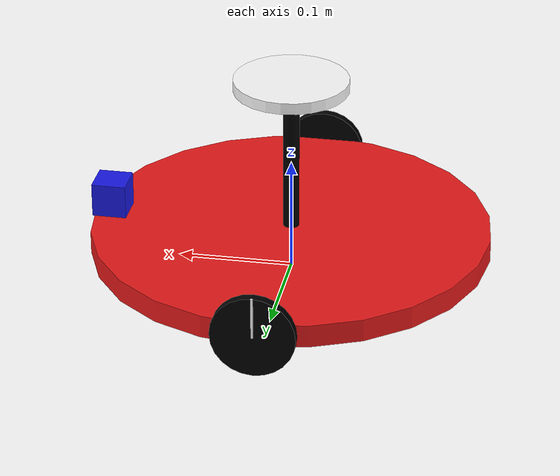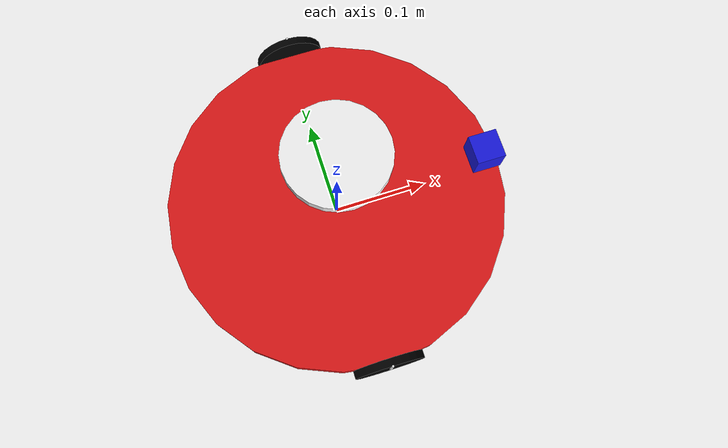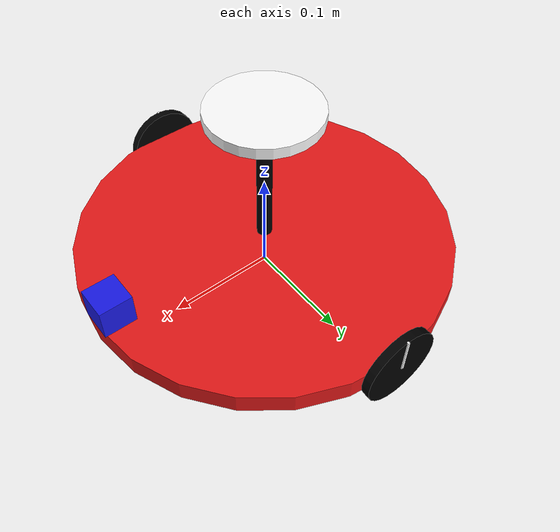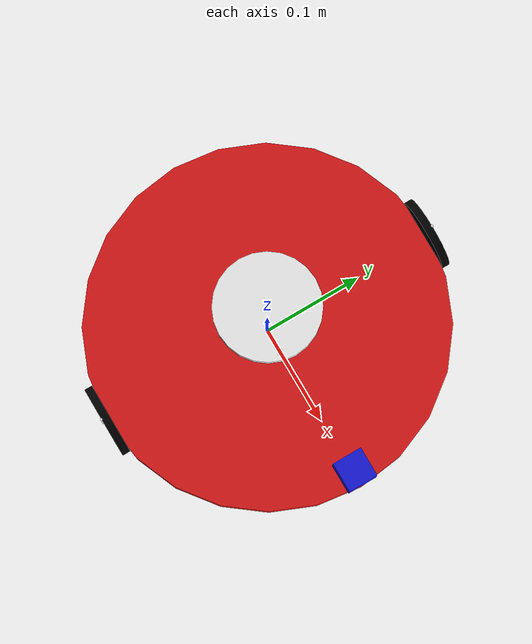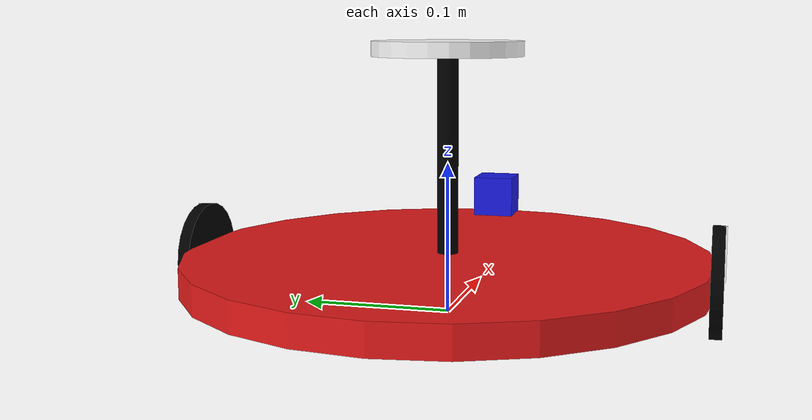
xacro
<?xml version="1.0"?>

<robot name="The_IAS_robot" xmlns:xacro="http://www.ros.org/wiki/xacro">
    <xacro:include filename="macros.xacro"/>

    <material name="red">
        <color rgba="0.9 0.1 0.1 1.0"/>
    </material>

    <material name="black">
        <color rgba="0.0 0.0 0.0 1.0"/>
    </material>

    <material name="blue">
        <color rgba="0.1 0.1 0.9 1.0"/>
    </material>

    <material name = "white">
        <color rgba="1 1 1 1.0"/>
    </material>

    <link name="base_footprint"/>

    <link name="base_link">
        <visual>
            <origin xyz="0.0 0.0 0.0" rpy="0.0 0.0 0.0"/>
            <geometry>
                <cylinder radius="${BASE_RADIUS}" length="${BASE_HEIGHT}"/>
            </geometry>
            <material name="red"/>
        </visual>
        <collision>
            <origin xyz="0.0 0.0 0.0" rpy="0.0 0.0 0.0"/>
            <geometry>
                <cylinder radius="${BASE_RADIUS}" length="${BASE_HEIGHT}"/>
            </geometry>
        </collision>
        <inertial>
            <mass value="${BASE_MASS}"/>
            <inertia ixx="${BASE_XX_YY_INERTIA}" ixy="0.0" ixz="0.0" iyy="${BASE_XX_YY_INERTIA}" iyz="0.0" izz="${BASE_ZZ_INERTIA}"/>
        </inertial>
    </link>

    <gazebo reference="base_link">
        <material>
            Gazebo/Red
        </material>
    </gazebo>

    <link name="head_link">
        <visual>
            <origin xyz="0.0 0.0 0.0" rpy="0.0 0.0 0.0"/>
            <geometry>
                <box size="${HEAD_SIDE_SIZE} ${HEAD_SIDE_SIZE} ${HEAD_SIDE_SIZE}"/>
            </geometry>
            <material name="blue"/>
        </visual>
        <collision>
            <origin xyz="0 0 0" rpy="0.0 0.0 0.0"/>
            <geometry>
                <box size="${HEAD_SIDE_SIZE} ${HEAD_SIDE_SIZE} ${HEAD_SIDE_SIZE}"/>
            </geometry>
        </collision>
        <inertial>
            <mass value="${HEAD_MASS}"/>
            <inertia ixx="${HEAD_XX_YY_ZZ_INERTIA}" ixy="0.0" ixz="0.0" iyy="${HEAD_XX_YY_ZZ_INERTIA}" iyz="0.0" izz="${HEAD_XX_YY_ZZ_INERTIA}"/>
        </inertial>
    </link>

    <gazebo reference="head_link">
        <material>
            Gazebo/Blue
        </material>
    </gazebo>

    <link name="rod_link">
        <visual>
            <origin xyz="0.0 0.0 0.0" rpy="0.0 0.0 0.0"/>
            <geometry>
                <cylinder radius="${ROD_RADIUS}" length="${ROD_HEIGHT}"/>
            </geometry>
            <material name="black"/>
        </visual>
        <collision>
            <origin xyz="0 0 0" rpy="0.0 0.0 0.0"/>
            <geometry>
                <cylinder radius="${ROD_RADIUS}" length="${ROD_HEIGHT}"/>
            </geometry>
        </collision>
    </link>

    <!-- Hokuyo Laser -->
    <link name="hokuyo_link">
        <collision>
            <origin xyz="0 0 0" rpy="0 0 0"/>
            <geometry>
                <cylinder radius="${LASER_RADIUS}" length="${LASER_HEIGHT}"/>
            </geometry>
        </collision>

        <visual>
            <origin xyz="0 0 0" rpy="0 0 0"/>
            <geometry>
                <cylinder radius="${LASER_RADIUS}" length="${LASER_HEIGHT}"/>
            </geometry>
            <material name="white"/>
        </visual>

    </link>

    <!-- hokuyo -->
    <gazebo reference="hokuyo_link">
        <sensor type="ray" name="head_hokuyo_sensor">
        <pose>0 0 0 0 0 0</pose>
        <visualize>true</visualize>
        <update_rate>40</update_rate>
        <ray>
            <scan>
            <horizontal>
                <samples>720</samples>
                <resolution>1</resolution>
                <min_angle>-1.570796</min_angle>
                <max_angle>1.570796</max_angle>
            </horizontal>
            </scan>
            <range>
            <min>0.10</min>
            <max>30.0</max>
            <resolution>0.01</resolution>
            </range>
            <noise>
            <type>gaussian</type>
            <mean>0.0</mean>
            <stddev>0.01</stddev>
            </noise>
        </ray>
        <plugin name="gazebo_ros_head_hokuyo_controller" filename="libgazebo_ros_ray_sensor.so">
            <ros>
                <remapping>~/out:=scan</remapping>
            </ros>
            <output_type>sensor_msgs/LaserScan</output_type>
            <frameName>hokuyo_link</frameName>
        </plugin>
        </sensor>
    </gazebo>

    <plugin name="gazebo_ros_head_hokuyo_controller" filename="libgazebo_ros_ray_sensor.so">
    <ros>
    <remapping>~/out:=scan</remapping>
    </ros>
    <output_type>sensor_msgs/LaserScan</output_type>
    <frame_name>""your laser link, whatever you named it"</frame_name>
    </plugin>

    <link name="passive_wheel_holder">
        <visual>
            <geometry>
                <box size="${SUPPORT_WIDTH} ${SUPPORT_WIDTH} ${WHEEL_HOLDER_HEIGHT}"/>
            </geometry>
            <material name="white"/>
        </visual>
        <collision>
            <geometry>
                <box size="${SUPPORT_WIDTH} ${SUPPORT_WIDTH} ${WHEEL_HOLDER_HEIGHT}"/>
            </geometry>
        </collision>
        <inertial>
            <mass value="${WHEEL_HOLDER_MASS}"/>
            <inertia ixx="${WHEEL_HOLDER_XX_INERTIA}" ixy="0.0" ixz="0.0" iyy="${WHEEL_HOLDER_YY_INERTIA}" iyz="0.0" izz="${WHEEL_HOLDER_ZZ_INERTIA}"/>
        </inertial>
    </link>

    <link name="passive_wheel">
        <visual>
            <origin xyz="0.0 0.0 0.0" rpy="0.0 0.0 0.0"/>
            <geometry>
                <sphere radius="${SUPPORT_WIDTH/2}"/>
            </geometry>
            <material name="white"/>
        </visual>
        <collision>
            <origin xyz="0.0 0.0 0.0" rpy="0.0 0.0 0.0"/>
            <geometry>
                <sphere radius="${SUPPORT_WIDTH/2}"/>
            </geometry>
        </collision>
        <inertial>
            <mass value="${PASSIVE_WHEEL_MASS}"/>
            <inertia ixx="${PASSIVE_WHEEL_XX_YY_ZZ_INERTIA}" ixy="0.0" ixz="0.0" iyy="${PASSIVE_WHEEL_XX_YY_ZZ_INERTIA}" iyz="0.0" izz="${PASSIVE_WHEEL_XX_YY_ZZ_INERTIA}"/>
        </inertial>
    </link>

    <gazebo reference="passive_wheel">
        <mu1>0.0</mu1>
        <mu2>0.0</mu2>
        <kp>100000.0</kp>
        <kd>0.5</kd>
    </gazebo>

    <xacro:wheel_link prefix = "left"/>
    <xacro:wheel_link prefix = "right"/>

    <xacro:rotation_marker_link prefix = "right"/>
    <xacro:rotation_marker_link prefix = "left"/>

    <xacro:wheel_joint prefix = "right" direction = "-1"/>
    <xacro:wheel_joint prefix = "left" direction = "1"/>

    <xacro:wheel_to_rotation_marker prefix = "right" side = "1"/>
    <xacro:wheel_to_rotation_marker prefix = "left" side = "-1"/>

    <joint name="passive_wheel_holder_to_wheel" type="fixed">
        <origin xyz="0.0 0.0 ${-WHEEL_HOLDER_HEIGHT/2}" rpy="0.0 0.0 0.0"/>
        <parent link="passive_wheel_holder"/>
        <child link="passive_wheel"/>
        <axis xyz="0.0 0.0 0.0"/>
    </joint>

    <joint name="head_to_support_base" type="fixed">
        <!-- xyz wrong since the distance is from the center of the head
             to the center of the support base -->
        <origin xyz="0.0 0.0 ${-(BASE_HEIGHT + HEAD_SIDE_SIZE/2 + WHEEL_HOLDER_HEIGHT/2)}"/>
        <parent link="head_link"/>
        <child link="passive_wheel_holder"/>
        <axis xyz="0.0 0.0 0.0"/>
    </joint>

    <joint name="base_link_to_head" type="fixed">
        <origin xyz="${BASE_RADIUS - HEAD_SIDE_SIZE/2} 0.0 ${BASE_HEIGHT/2 + HEAD_SIDE_SIZE/2}"/>
        <parent link="base_link"/>
        <child link="head_link"/>
        <axis xyz="0.0 0.0 0.0"/>
    </joint>

    <joint name="base_link_to_rod" type="fixed">
        <origin xyz="0.0 0.0 ${BASE_HEIGHT/2 + ROD_HEIGHT/2}"/>
        <parent link="base_link"/>
        <child link="rod_link"/>
        <axis xyz="0.0 0.0 0.0"/>
    </joint>

    <joint name="hokuyo_joint" type="fixed">
        <axis xyz="0 1 0" />
        <origin xyz="0 0 ${LASER_HEIGHT/2 + ROD_HEIGHT/2}" rpy="0 0 0"/>
        <parent link="rod_link"/>
        <child link="hokuyo_link"/>
    </joint>

    <joint name="base_link_to_footprint" type="fixed">
        <origin xyz="0.0 0.0 0.03" rpy="0.0 0.0 0.0"/>
        <parent link="base_footprint"/>
        <child link="base_link"/>
    </joint>

    <gazebo>
        <plugin name="p3d_base_controller" filename="libgazebo_ros_p3d.so">
        <ros>
            <remapping>odom:=ground_truth</remapping>
        </ros>
        <update_rate>50.0</update_rate>
        <body_name>base_footprint</body_name>
        <gaussian_noise>0.0</gaussian_noise>
        <frame_name>map</frame_name>
        <xyz_offset>0 0 0</xyz_offset>
        <rpy_offset>0 0 0</rpy_offset>
        </plugin>
    </gazebo>

    <gazebo>
        <plugin name="diff_rob" filename="libgazebo_ros_diff_drive.so">
            <ros>
                <remapping>odom:=diff_cont/odom</remapping>
                <namespace>detector_robot</namespace>
            </ros>
            <update_rate>30</update_rate>

            <!-- wheels -->
            <left_joint>base_to_left_wheel</left_joint>
            <right_joint>base_to_right_wheel</right_joint>

            <!-- kinematics -->
            <wheel_separation>0.28</wheel_separation>
            <wheel_diameter>0.06</wheel_diameter>

            <!-- limits -->
            <max_wheel_torque>20</max_wheel_torque>
            <max_wheel_acceleration>1.0</max_wheel_acceleration>

            <!-- output -->
            <publish_odom>true</publish_odom>
            <publish_odom_tf>true</publish_odom_tf>
            <publish_wheel_tf>true</publish_wheel_tf>

            <command_topic>cmd_vel</command_topic>
            <odometry_topic>odom</odometry_topic>
            <odometry_source>0</odometry_source>
            <odometry_frame>odom</odometry_frame>
            <robot_base_frame>base_footprint</robot_base_frame>
        </plugin>
    </gazebo>

</robot>

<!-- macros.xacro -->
<robot name="my_robot" xmlns:xacro="http://www.ros.org/wiki/xacro">

<xacro:property name = "BASE_RADIUS" value = "0.175"/>
    <xacro:property name = "BASE_HEIGHT" value = "0.02"/>
    <xacro:property name = "WHEEL_RADIUS" value = "0.036"/>
    <xacro:property name = "WHEEL_HEIGHT" value = "0.008"/>
    <xacro:property name = "HEAD_SIDE_SIZE" value = "0.03"/>
    <xacro:property name = "SUPPORT_WIDTH" value = "0.015"/>

    <xacro:property name = "WHEEL_HOLDER_HEIGHT" value = "${(WHEEL_RADIUS - BASE_HEIGHT/2) - SUPPORT_WIDTH/2}"/>

    <xacro:property name = "WHEEL_MASS" value = "0.025"/>
    <xacro:property name = "BASE_MASS" value = "0.2"/>
    <xacro:property name = "HEAD_MASS" value = "0.02"/>
    <xacro:property name = "WHEEL_HOLDER_MASS" value = "0.015"/>
    <xacro:property name = "PASSIVE_WHEEL_MASS" value = "0.01"/>

    <xacro:property name = "WHEEL_XX_YY_INERTIA" value = "${(1/12)*WHEEL_MASS*(3*(WHEEL_RADIUS**2)+(WHEEL_HEIGHT**2))}"/>
    <xacro:property name = "WHEEL_ZZ_INERTIA" value = "${(1/2)*WHEEL_MASS*WHEEL_RADIUS**2}"/>

    <xacro:property name = "BASE_XX_YY_INERTIA" value = "${(1/12)*BASE_MASS*(3*(BASE_RADIUS**2)+(BASE_HEIGHT**2))}"/>
    <xacro:property name = "BASE_ZZ_INERTIA" value = "${(1/2)*BASE_MASS*BASE_RADIUS**2}"/>

    <xacro:property name = "HEAD_XX_YY_ZZ_INERTIA" value = "${(1/6)*HEAD_MASS*(HEAD_SIDE_SIZE**2)}"/>

    <xacro:property name = "WHEEL_HOLDER_XX_INERTIA" value = "${(1/12)*WHEEL_HOLDER_MASS*((SUPPORT_WIDTH**2)+(WHEEL_HOLDER_HEIGHT**2))}"/>
    <xacro:property name = "WHEEL_HOLDER_YY_INERTIA" value = "${(1/12)*WHEEL_HOLDER_MASS*((SUPPORT_WIDTH**2)+(WHEEL_HOLDER_HEIGHT**2))}"/>
    <xacro:property name = "WHEEL_HOLDER_ZZ_INERTIA" value = "${(1/12)*WHEEL_HOLDER_MASS*((SUPPORT_WIDTH**2)+(SUPPORT_WIDTH**2))}"/>

    <xacro:property name = "PASSIVE_WHEEL_XX_YY_ZZ_INERTIA" value = "${(2/5)*PASSIVE_WHEEL_MASS*(SUPPORT_WIDTH/2)**2}"/>

    <xacro:property name="CAMERA_SIDE_SIZE" value="0.02" /> <!-- Size of square 'camera' box -->

    <xacro:property name="ROD_HEIGHT" value="0.13"/>
    <xacro:property name="ROD_RADIUS" value="0.007"/>

    <xacro:property name="LASER_HEIGHT" value="0.01"/>
    <xacro:property name="LASER_RADIUS" value="0.05"/>

    <!--
    Parameters:
        prefix - name the side of the wheel (right/left)
    -->
    <xacro:macro name = "wheel_link" params = "prefix">
        <link name="${prefix}_wheel">
            <visual>
                <origin xyz="0.0 0.0 0.0" rpy="0.0 0.0 0.0"/>
                <geometry>
                    <cylinder radius="${WHEEL_RADIUS}" length="${WHEEL_HEIGHT}"/>
                </geometry>
                <material name="black"/>
            </visual>
            <collision>
                <origin xyz="0.0 0.0 0.0" rpy="0.0 0.0 0.0"/>
                <geometry>
                    <cylinder radius="${WHEEL_RADIUS}" length="${WHEEL_HEIGHT}"/>
                </geometry>
            </collision>
            <inertial>
                <mass value="${WHEEL_MASS}"/>
                <inertia ixx="${WHEEL_XX_YY_INERTIA}" ixy="0.0" ixz="0.0" iyy="${WHEEL_XX_YY_INERTIA}" iyz="0.0" izz="${WHEEL_ZZ_INERTIA}"/>
            </inertial>

        </link>

        <gazebo reference="${prefix}_wheel">
            <mu1>1</mu1>
            <mu2>0.1</mu2>
            <kp>1000000</kp>
            <kd>1</kd>
            <material>Gazebo/Black</material>
        </gazebo>

    </xacro:macro>

    <xacro:macro name = "wheel_joint" params = "prefix direction">
        <joint name="base_to_${prefix}_wheel" type="revolute">
            <origin xyz="0.0 ${BASE_RADIUS*direction} 0.0" rpy=" ${direction*(-pi/2)} 0.0 0.0"/>
            <parent link="base_link"/>
            <child link="${prefix}_wheel"/>
            <axis xyz="0.0 0.0 ${direction}"/>
            <limit lower="-1000" upper="1000" effort="1.0" velocity="10.0"/>
        </joint>
    </xacro:macro>

    <!--
    Parameters:
        prefix - name the side of the wheel (right/left)
    -->
    <xacro:macro name = "rotation_marker_link" params = "prefix">
        <link name="${prefix}_rotation_marker_link">
            <visual>
                <origin xyz="0.0 0.0 0.0" rpy="0.0 0.0 0.0"/>
                <geometry>
                    <box size="0.002 ${WHEEL_RADIUS} 0.002"/>w
                </geometry>
                <material name="white"/>
            </visual>
        </link>
    </xacro:macro>

    <xacro:macro name = "wheel_to_rotation_marker" params = "prefix side">
        <joint name="${prefix}_rotation_marker_joint" type="fixed">
            <origin xyz="0 ${side * WHEEL_RADIUS/2} 0.0041" rpy="0.0 0.0 0.0"/>
            <!-- Moved the marker out of the wheel for
                 half a wheel and a marker width away -->

            <parent link="${prefix}_wheel"/>
            <child link="${prefix}_rotation_marker_link"/>
            <axis xyz="0.0 0.0 0.0"/>
            <limit lower="0.0" upper="0.0" effort="0.0" velocity="0.0"/>
        </joint>
    </xacro:macro>
</robot>
